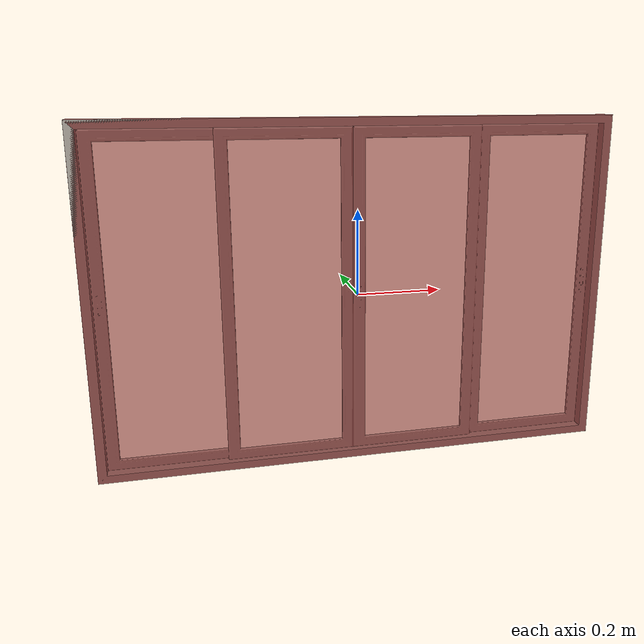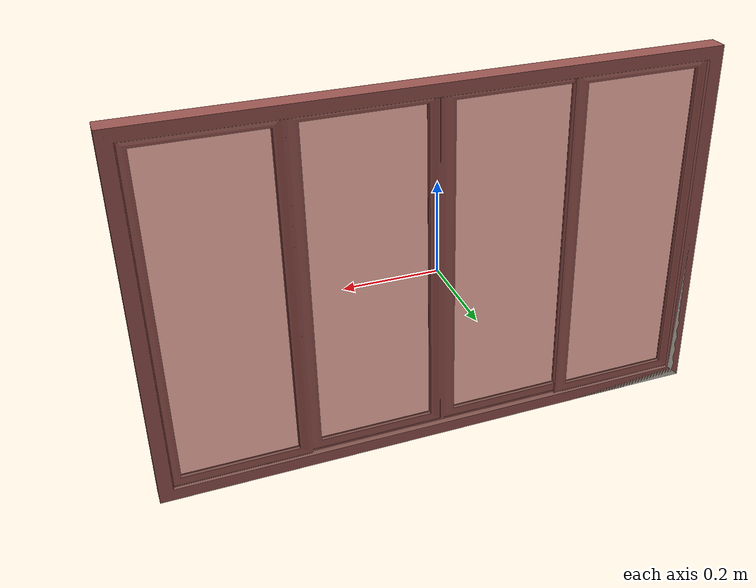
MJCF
<?xml version='1.0' encoding='UTF-8'?>
<mujoco model="model">
  <option timestep="0.002" gravity="0.0 0.0 -9.81"/>
  <compiler angle="radian"/>
  <asset>
    <mesh file="visuals/Window057.obj" name="Window057_vis"/>
    <mesh file="visuals/Clear.obj" name="Window057_Clear_vis"/>
    <texture file="visuals/T_BC001.png" name="tex" type="2d"/>
    <material name="mat" rgba="1 1 1 1.0" texture="tex" shininess="0.4472135901451111" specular="0.3103448502657381"/>
    <material name="mat2" rgba="1 1 1 0.20000000298023224" texture="tex" shininess="0.4472135901451111" specular="0.3103448502657381"/>
  </asset>
  <default>
    <default class="visual">
      <geom conaffinity="0" contype="0" group="1" type="mesh"/>
    </default>
    <default class="collision">
      <geom group="0" rgba="0.5 0 0 0.5" density="1.0" solref="0.004 1" solimp="0.998 0.998 0.001"/>
    </default>
    <default class="spawn">
      <geom group="0" rgba="1 1 1 0.5" contype="0" conaffinity="0"/>
      <site group="0" rgba="1 1 1 0.5"/>
    </default>
    <default class="region">
      <geom group="1" conaffinity="0" contype="0" rgba="0 1 0 0" mass="0"/>
    </default>
  </default>
  <worldbody>
    <body>
      <body name="object">
        <geom mesh="Window057_vis" type="mesh" solimp="0.998 0.998 0.001" solref="0.001 1" friction="0.95 0.3 0.1" class="visual" material="mat"/>
        <geom type="box" pos="2.9802322387695312e-08 -1.862645149230957e-08 -4.470348358154297e-08" size="0.6162118911743164 0.020419128239154816 0.4083624482154846" quat="1.0 0.0 0.0 0.0" class="collision"/>
        <body name="Window057_Clear">
          <geom mesh="Window057_Clear_vis" type="mesh" solimp="0.998 0.998 0.001" solref="0.001 1" friction="0.95 0.3 0.1" class="visual" material="mat2"/>
        </body>
        <geom class="region" name="reg_main" type="box" pos="0.0 -1.955777406692505e-08 -4.470348358154297e-08" size="0.6172118911743164 0.021419128239154817 0.4093624482154846"/>
      </body>
    </body>
  </worldbody>
  <actuator/>
</mujoco>
